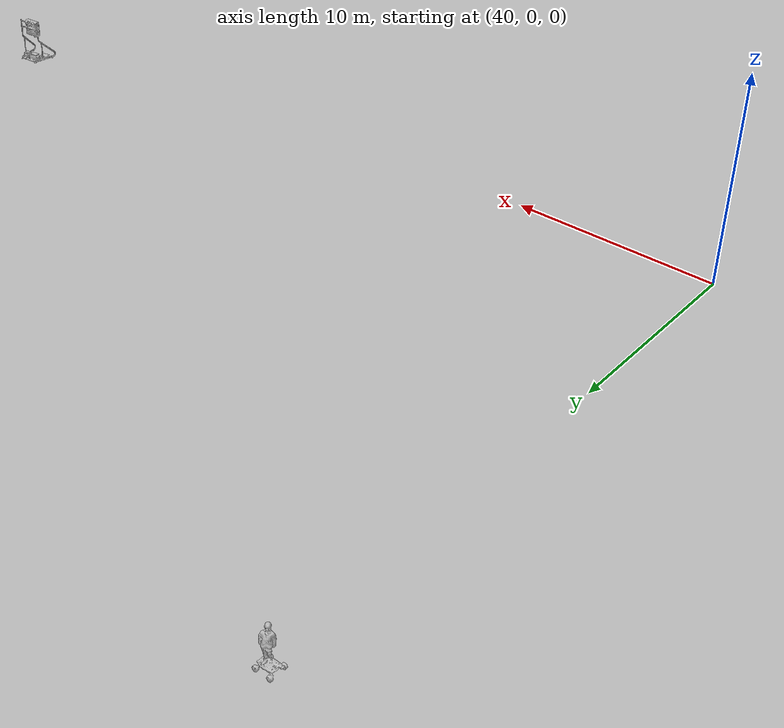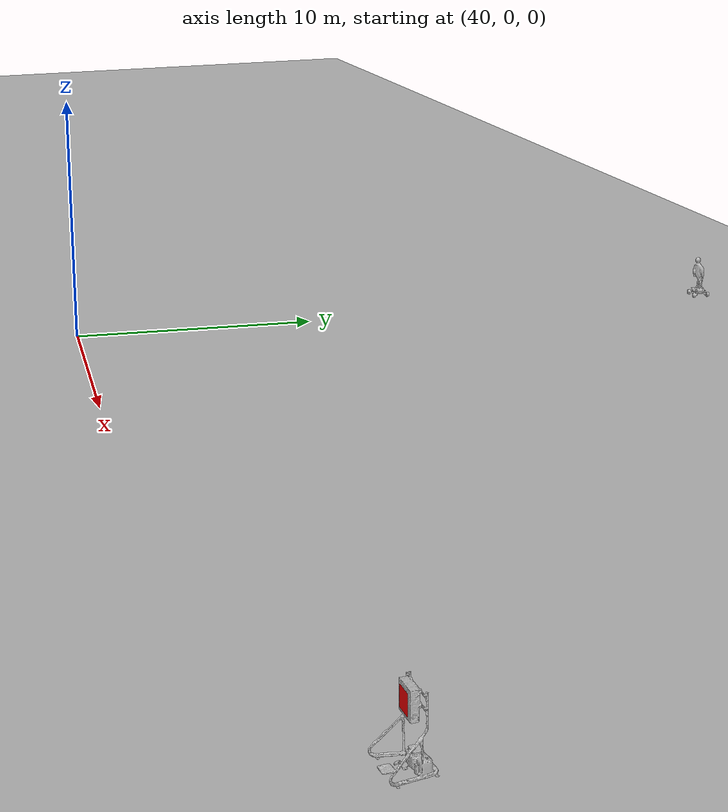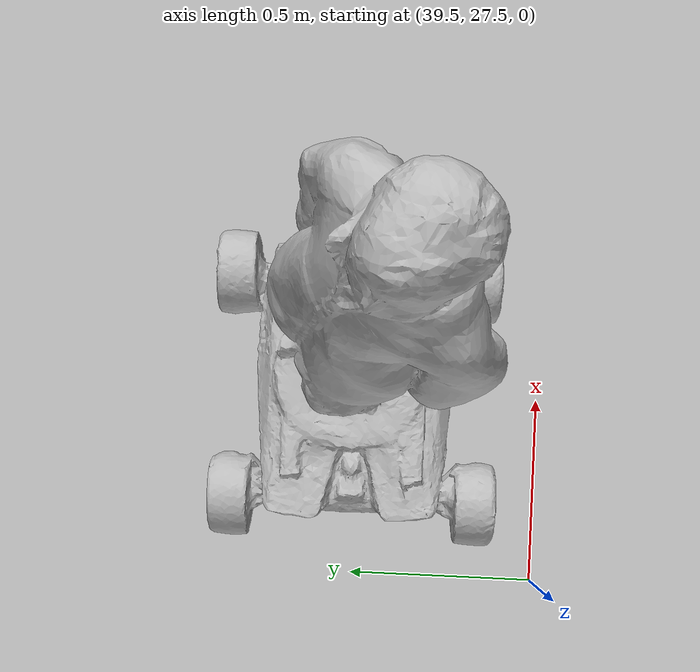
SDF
<sdf version="1.8">
 <world name="car_world">
  <physics name="1ms" type="ignored">
   <max_step_size>0.001</max_step_size>
   <real_time_factor>1.0</real_time_factor>
   <gravity>0 0 -9.8</gravity>
  </physics>
  <plugin filename="libignition-gazebo-physics-system.so" name="ignition::gazebo::systems::Physics"/>
  <plugin filename="libignition-gazebo-user-commands-system.so" name="ignition::gazebo::systems::UserCommands"/>
  <plugin filename="libignition-gazebo-scene-broadcaster-system.so" name="ignition::gazebo::systems::SceneBroadcaster"/>
  <plugin filename="ignition-gazebo-navsat-system" name="ignition::gazebo::systems::NavSat"/>
  <plugin filename="libignition-gazebo-imu-system.so" name="ignition::gazebo::systems::Imu"/>
  <plugin filename="libignition-gazebo-sensors-system.so" name="ignition::gazebo::systems::Sensors"/>
  <plugin filename="PylonControl" name="ignition::gazebo::PylonControl">
   <path_file_name>dynamic_obstacle_left1</path_file_name>
   <panel_model_name>panel</panel_model_name>
   <robot_model_name>ai_car1</robot_model_name>
   <pylon_model_name>pylon</pylon_model_name>
   <setting_service_name>/pylon/setting</setting_service_name>
   <clear_service_name>/pylon/clear</clear_service_name>
   <clearance>20.0</clearance>
   <group_interval>10.0</group_interval>
   <lateral_range>3.0</lateral_range>
   <pylon_interval>0.5</pylon_interval>
   <group_num>3</group_num>
   <min_pylon_num>2</min_pylon_num>
   <max_pylon_num>4</max_pylon_num>
  </plugin>
  <light type="directional" name="sun">
   <pose>0 0 10 0 0 0</pose>
   <diffuse>0.8 0.8 0.8 1</diffuse>
   <specular>0.2 0.2 0.2 1</specular>
   <attenuation>
    <range>1000</range>
    <constant>0.9</constant>
    <linear>0.01</linear>
    <quadratic>0.001</quadratic>
   </attenuation>
   <direction>-0.5 0.1 -0.9</direction>
  </light>
  <model name="black_ground_plane">
   <static>true</static>
   <pose>0 0 -0.1 0 0 0</pose>
   <link name="link">
    <collision name="collision">
     <geometry><plane><normal>0 0 1</normal><size>600 600</size></plane></geometry>
    </collision>
    <visual name="visual">
     <geometry><plane><normal>0 0 1</normal><size>600 600</size></plane></geometry>
     <material><ambient>0 0 0 1</ambient><diffuse>0 0 0 1</diffuse><specular>0 0 0 1</specular></material>
    </visual>
   </link>
  </model>
  <model name="ground_plane">
   <static>true</static>
   <pose>1.225816 0.278738 0 0 0 0.02568048</pose>
   <link name="link">
    <collision name="collision"><geometry><plane><normal>0 0 1</normal></plane></geometry></collision>
    <visual name="visual">
     <geometry>
      <mesh><uri>package://simulator/world/meshes/shihou_world.dae</uri><scale>0.8 0.8 0.8</scale></mesh>
     </geometry>
    </visual>
   </link>
  </model>
  <include><uri>package://simulator/models/dynamic_obstacle</uri><pose>40 28.0 0 0 0 3.14</pose></include>
  <include><uri>package://simulator/models/panel</uri><pose>80.25 4.5 0.0 0 0 3.24</pose></include>
  <spherical_coordinates>
   <surface_model>EARTH_WGS84</surface_model>
   <world_frame_orientation>ENU</world_frame_orientation>
   <latitude_deg>36.1131311</latitude_deg>
   <longitude_deg>139.9810753</longitude_deg>
   <elevation>0</elevation>
   <heading_deg>0</heading_deg>
  </spherical_coordinates>
 </world>
</sdf>

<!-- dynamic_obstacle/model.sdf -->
<sdf version="1.5">
  <model name="human_robot">
  <pose>0 0 0 0 0 0</pose>

  <!-- ignition plugin -->

    <plugin
      filename="libignition-gazebo-diff-drive-system.so"
      name="ignition::gazebo::systems::DiffDrive">
      <left_joint>left_frontwheel_joint</left_joint>
      <left_joint>left_backwheel_joint</left_joint>
      <right_joint>right_frontwheel_joint</right_joint>
      <right_joint>right_backwheel_joint</right_joint>
      <wheel_separation>0.580</wheel_separation>
      <wheel_radius>0.080</wheel_radius>
      <odom_publish_frequency>30</odom_publish_frequency>
      <topic>/cmd_vel_obstacle</topic>
      <odom_topic>odom_obstacle</odom_topic>
    </plugin>

    <plugin
      filename="PathPublisher"
      name="ignition::gazebo::PathPublisher">
      <first_file_name>dynamic_obstacle_left1</first_file_name>
      <second_file_name>dynamic_obstacle_right1</second_file_name>
    </plugin>
    <plugin
      filename="FollowPath"
      name="ignition::gazebo::FollowPath">
      <robot_name>human_robot</robot_name>
      <threshold>2.0</threshold>
      <linear_vel>1.39</linear_vel>
      <p_gain>1.0</p_gain>
      <i_gain>0.0</i_gain>
      <d_gain>0.14</d_gain>
    </plugin>

    <!-- chassis -->

    <link name='body'>
      <pose relative_to='__model__'>0 0 0.15 0 0 0</pose>

      <inertial> <!--inertial properties of the link mass, inertia matix-->
        <inertia>
          <ixx>4.56667</ixx>
          <ixy>0</ixy>
          <ixz>0</ixz>
          <iyy>4.56667</iyy>
          <iyz>0</iyz>
          <izz>4.56667</izz>
        </inertia>
        <mass>30.0</mass>
      </inertial>

      <visual name='visual'>
        <pose>-0.0 0.0 -0.1 0 0 0</pose>
        <geometry>
          <mesh>
            <uri>package://simulator/models/dynamic_obstacle/meshes/human_robot6.dae</uri>
            <scale>0.2 0.2 0.2</scale>
          </mesh>
        </geometry>
      </visual>

      <collision name='collision'>
        <pose>0 0 0.15 0 0 3.14159</pose>
        <geometry>
          <box>
            <size>0.612 0.580 0.1</size>
          </box>
        </geometry>
        <surface>
          <contact>
            <collide_bitmask>0x0A</collide_bitmask>
          </contact>
        </surface>
      </collision>
    </link>

    <!-- left wheel -->

    <link name='left_frontwheel'>
      <pose relative_to="body">0.306 0.306 0 1.57 0 0</pose>
      <inertial>
        <mass>1.0</mass>
        <inertia>
          <ixx>0.04778</ixx>
          <ixy>0</ixy>
          <ixz>0</ixz>
          <iyy>0.04778</iyy>
          <iyz>0</iyz>
          <izz>0.07875</izz>
        </inertia>
      </inertial>
      <collision name='collision'>
        <pose>0 0 0 0 0 0</pose>
	      <geometry>
          <cylinder>
            <radius>0.080</radius>
	          <length>0.08</length>
          </cylinder>
        </geometry>
        <surface>
          <contact>
            <collide_bitmask>0x0A</collide_bitmask>
          </contact>
        </surface>
      </collision>
    </link>

    <!-- right wheel -->

    <link name='right_frontwheel'>
      <pose relative_to="body">0.306 -0.306 0 1.57 0 0</pose> <!--angles are in radian-->
      <inertial>
        <mass>1.0</mass>
        <inertia>
          <ixx>0.04778</ixx>
          <ixy>0</ixy>
          <ixz>0</ixz>
          <iyy>0.04778</iyy>
          <iyz>0</iyz>
          <izz>0.07875</izz>
        </inertia>
      </inertial>
      <collision name='collision'>
	    <pose>0 0.0 0 0 0 0</pose>
        <geometry>
          <cylinder>
            <radius>0.080</radius>
            <length>0.08</length>
          </cylinder>
        </geometry>
        <surface>
          <contact>
            <collide_bitmask>0x0A</collide_bitmask>
          </contact>
        </surface>
      </collision>
    </link>

    <!-- caster wheel -->

    <frame name="caster_frame" attached_to='body'>
        <pose>-0.306 0 0 0 0 0</pose>
    </frame>

    <link name='right_backwheel'>
      <pose relative_to='caster_frame'>0 -0.306 0 1.57 0 0</pose>
      <inertial>
        <mass>1.0</mass>
        <inertia>
          <ixx>0.001</ixx>
          <ixy>0</ixy>
          <ixz>0</ixz>
          <iyy>0.001</iyy>
          <iyz>0</iyz>
          <izz>0.001</izz>
        </inertia>
      </inertial>
      <collision name='collision'>
        <geometry>
          <cylinder>
            <radius>0.080</radius>
            <length>0.08</length>
          </cylinder>
        </geometry>
        <surface>
          <contact>
            <collide_bitmask>0x0A</collide_bitmask>
          </contact>
        </surface>
      </collision>
    </link>

    <link name='left_backwheel'>
      <pose relative_to='caster_frame'>0 0.306 0 1.57 0 0</pose>
      <inertial>
        <mass>1.0</mass>
        <inertia>
          <ixx>0.04778</ixx>
          <ixy>0</ixy>
          <ixz>0</ixz>
          <iyy>0.04778</iyy>
          <iyz>0</iyz>
          <izz>0.07875</izz>
        </inertia>
      </inertial>
      <collision name='collision'>
        <geometry>
          <cylinder>
            <radius>0.080</radius>
            <length>0.08</length>
          </cylinder>
        </geometry>
        <surface>
          <contact>
            <collide_bitmask>0x0A</collide_bitmask>
          </contact>
        </surface>
      </collision>
    </link>

    <!-- joint config -->

    <joint name='left_frontwheel_joint' type='revolute'>
      <pose relative_to='left_frontwheel'/>
      <parent>body</parent>
      <child>left_frontwheel</child>
      <axis>
        <xyz expressed_in='__model__'>0 1 0</xyz>
        <limit>
          <effort>84.4</effort>
        </limit>
        <dynamics>
          <friction>0.9</friction>  <!-- 静止摩擦 -->
        </dynamics>
      </axis>
    </joint>

    <joint name='right_frontwheel_joint' type='revolute'>
      <pose relative_to='right_frontwheel'/>
      <parent>body</parent>
      <child>right_frontwheel</child>
      <axis>
        <xyz expressed_in='__model__'>0 1 0</xyz>
        <limit>
          <effort>84.4</effort>
        </limit>
        <dynamics>
          <friction>0.9</friction>  <!-- 静止摩擦 -->
        </dynamics>
      </axis>
    </joint>

    <joint name='right_backwheel_joint' type='revolute'>
      <pose relative_to='right_backwheel'/>
      <parent>body</parent>
      <child>right_backwheel</child>
      <axis>
        <xyz expressed_in='__model__'>0 1 0</xyz>
        <limit>
          <effort>84.4</effort>
        </limit>
        <dynamics>
          <friction>0.9</friction>  <!-- 静止摩擦 -->
        </dynamics>
      </axis>
    </joint>

    <joint name='left_backwheel_joint' type='revolute'>
      <pose relative_to='left_backwheel'/>
      <parent>body</parent>
      <child>left_backwheel</child>
      <axis>
        <xyz expressed_in='__model__'>0 1 0</xyz>
        <limit>
          <effort>84.4</effort>
        </limit>
        <dynamics>
          <friction>0.9</friction>  <!-- 静止摩擦 -->
        </dynamics>
      </axis>
    </joint>

    <!-- sensors -->
    <link name="gps_link">
      <sensor name="gps_sensor" type="navsat">
        <always_on>true</always_on>
        <update_rate>5.0</update_rate>
        <topic>obstacle/navsat</topic>
      </sensor>
    </link>
    <link name="imu_link">
      <sensor name="imu_sensor" type="imu">
        <always_on>1</always_on>
        <update_rate>20.0</update_rate> <!--Hz-->
        <visualize>true</visualize>
        <topic>obstacle/imu</topic>
      </sensor>
    </link>

    <joint name="gps_joint" type="fixed">
      <parent>body</parent>
      <child>gps_link</child>
      <pose>0 0 0 0 0 0</pose>
      <axis>
        <xyz>0 0 1</xyz>
      </axis>
    </joint>

    <joint name="imu_joint" type="fixed">
      <parent>body</parent>
      <child>imu_link</child>
      <pose>0.0 0.0 0.0 0 0 0</pose>
      <axis>
        <xyz>0 0 1</xyz>
      </axis>
    </joint>

  </model>
</sdf>

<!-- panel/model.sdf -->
<sdf version="1.5">
  <model name="panel">
    <static>true</static>
      <link name="panel">
        <visual name="visual">
          <geometry>
            <mesh>
              <uri>package://simulator/models/panel/meshes/panel3.dae</uri>
              <scale>0.3 0.3 0.3</scale>
            </mesh>
          </geometry>
        </visual>
        <collision name='collision'>
          <pose>-0.05 0 1.15 1.57 0 0</pose>
          <geometry>
            <box>
              <size>1.65 2.35 1.3</size>
            </box>
          </geometry>
      </collision>
      </link>
      <link name="screen">
        <pose>-0.02 0 0 0 0 3.14</pose>
        <visual name="screen_visual">
          <geometry>
            <mesh>
              <uri>package://simulator/models/panel/meshes/screen.dae</uri>
              <scale>0.3 0.3 0.3</scale>
            </mesh>
          </geometry>
            <material>
                <ambient>1.0 0.0 0.0 1.0</ambient>
                <diffuse>1.0 0.0 0.0 1.0</diffuse>
                <specular>1.0 1.0 1.0 1.0</specular>
                <emissive>1.0 0.0 0.0 1.0</emissive>
            </material>
        </visual>
      </link>
      <plugin
        filename="ColorControl"
        name="ignition::gazebo::ColorControl">
        <control_name>screen_visual</control_name>
        <service_name>/panel/toggle_signal</service_name>
      </plugin>
  </model>
</sdf>
